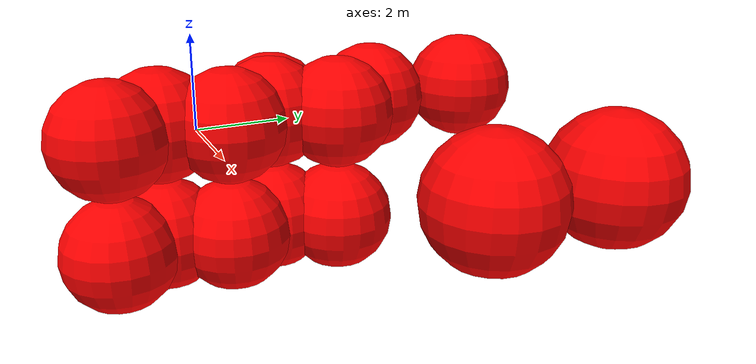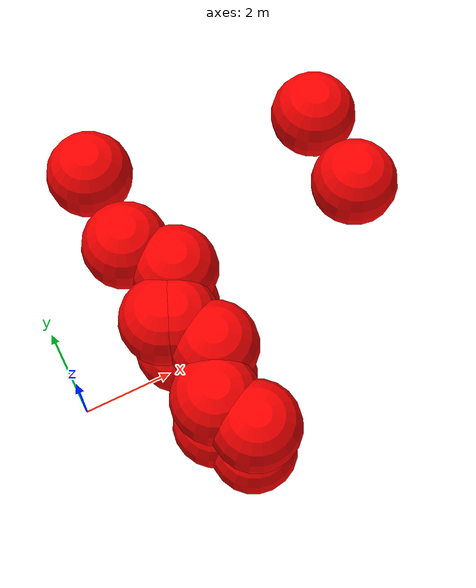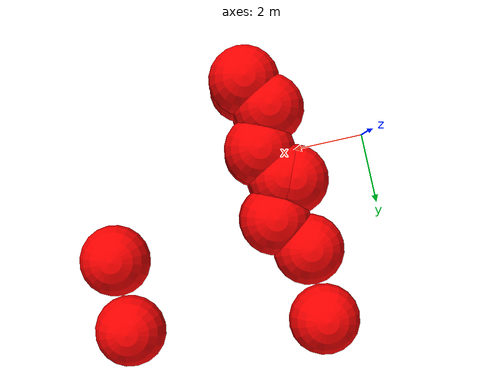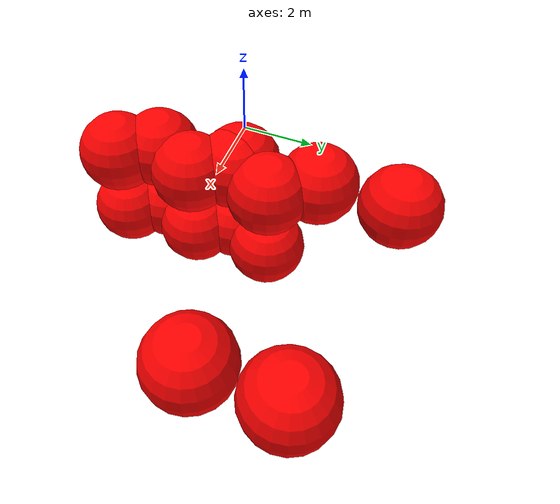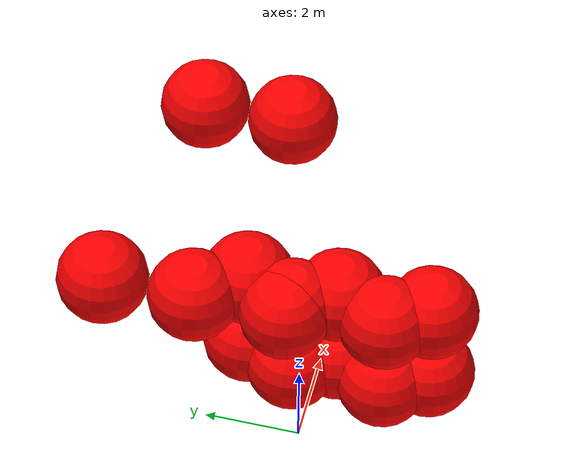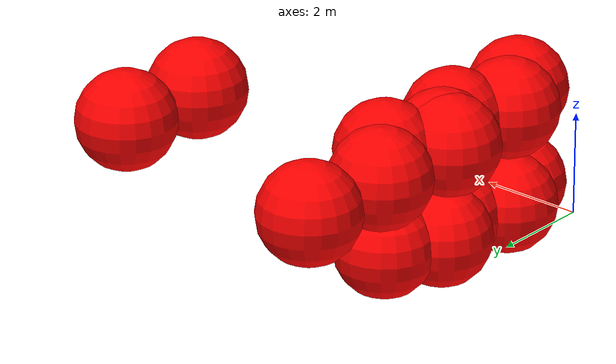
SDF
<sdf version="1.8">
 <world name="3d_world">
  <model name="obstacle_1" canonical_link="obstacle">
   <static>true</static>
   <pose relative_to="world">2.54 -1.25 -1.00 0 0 0</pose>
   <link name="obstacle">
    <pose relative_to="__model__">0.0 0 0.0 0 0 0</pose>
    <visual name="visual">
     <geometry><sphere><radius>1.00</radius></sphere></geometry>
     <material>
      <ambient>1.0 0.0 0.0 1</ambient>
      <diffuse>1.0 0.0 0.0 1</diffuse>
      <specular>1.0 0.0 0.0 1</specular>
     </material>
    </visual>
    <collision name="collision"><geometry><sphere><radius>1.00</radius></sphere></geometry></collision>
    <enable_gravity>false</enable_gravity>
   </link>
   <plugin filename="ignition-gazebo-velocity-control-system" name="ignition::gazebo::systems::VelocityControl">
    <initial_linear>0.00 0.00 0.00</initial_linear>
    <initial_angular>0 0 0</initial_angular>
   </plugin>
   <plugin filename="ignition-gazebo-odometry-publisher-system" name="ignition::gazebo::systems::OdometryPublisher">
    <dimensions>3</dimensions>
   </plugin>
  </model>
  <model name="obstacle_2" canonical_link="obstacle">
   <static>true</static>
   <pose relative_to="world">2.54 0.75 -1.00 0 0 0</pose>
   <link name="obstacle">
    <pose relative_to="__model__">0.0 0 0.0 0 0 0</pose>
    <visual name="visual">
     <geometry><sphere><radius>1.00</radius></sphere></geometry>
     <material>
      <ambient>1.0 0.0 0.0 1</ambient>
      <diffuse>1.0 0.0 0.0 1</diffuse>
      <specular>1.0 0.0 0.0 1</specular>
     </material>
    </visual>
    <collision name="collision"><geometry><sphere><radius>1.00</radius></sphere></geometry></collision>
    <enable_gravity>false</enable_gravity>
   </link>
   <plugin filename="ignition-gazebo-velocity-control-system" name="ignition::gazebo::systems::VelocityControl">
    <initial_linear>0.00 0.00 0.00</initial_linear>
    <initial_angular>0 0 0</initial_angular>
   </plugin>
   <plugin filename="ignition-gazebo-odometry-publisher-system" name="ignition::gazebo::systems::OdometryPublisher">
    <dimensions>3</dimensions>
   </plugin>
  </model>
  <model name="obstacle_3" canonical_link="obstacle">
   <static>true</static>
   <pose relative_to="world">2.54 -1.25 1.00 0 0 0</pose>
   <link name="obstacle">
    <pose relative_to="__model__">0.0 0 0.0 0 0 0</pose>
    <visual name="visual">
     <geometry><sphere><radius>1.00</radius></sphere></geometry>
     <material>
      <ambient>1.0 0.0 0.0 1</ambient>
      <diffuse>1.0 0.0 0.0 1</diffuse>
      <specular>1.0 0.0 0.0 1</specular>
     </material>
    </visual>
    <collision name="collision"><geometry><sphere><radius>1.00</radius></sphere></geometry></collision>
    <enable_gravity>false</enable_gravity>
   </link>
   <plugin filename="ignition-gazebo-velocity-control-system" name="ignition::gazebo::systems::VelocityControl">
    <initial_linear>0.00 0.00 0.00</initial_linear>
    <initial_angular>0 0 0</initial_angular>
   </plugin>
   <plugin filename="ignition-gazebo-odometry-publisher-system" name="ignition::gazebo::systems::OdometryPublisher">
    <dimensions>3</dimensions>
   </plugin>
  </model>
  <model name="obstacle_4" canonical_link="obstacle">
   <static>true</static>
   <pose relative_to="world">2.54 0.75 1.00 0 0 0</pose>
   <link name="obstacle">
    <pose relative_to="__model__">0.0 0 0.0 0 0 0</pose>
    <visual name="visual">
     <geometry><sphere><radius>1.00</radius></sphere></geometry>
     <material>
      <ambient>1.0 0.0 0.0 1</ambient>
      <diffuse>1.0 0.0 0.0 1</diffuse>
      <specular>1.0 0.0 0.0 1</specular>
     </material>
    </visual>
    <collision name="collision"><geometry><sphere><radius>1.00</radius></sphere></geometry></collision>
    <enable_gravity>false</enable_gravity>
   </link>
   <plugin filename="ignition-gazebo-velocity-control-system" name="ignition::gazebo::systems::VelocityControl">
    <initial_linear>0.00 0.00 0.00</initial_linear>
    <initial_angular>0 0 0</initial_angular>
   </plugin>
   <plugin filename="ignition-gazebo-odometry-publisher-system" name="ignition::gazebo::systems::OdometryPublisher">
    <dimensions>3</dimensions>
   </plugin>
  </model>
  <model name="obstacle_10" canonical_link="obstacle">
   <static>true</static>
   <pose relative_to="world">2.30 0.85 1.00 0 0 0</pose>
   <link name="obstacle">
    <pose relative_to="__model__">0.0 0 0.0 0 0 0</pose>
    <visual name="visual">
     <geometry><sphere><radius>1.00</radius></sphere></geometry>
     <material>
      <ambient>1.0 0.0 0.0 1</ambient>
      <diffuse>1.0 0.0 0.0 1</diffuse>
      <specular>1.0 0.0 0.0 1</specular>
     </material>
    </visual>
    <collision name="collision"><geometry><sphere><radius>1.00</radius></sphere></geometry></collision>
    <enable_gravity>false</enable_gravity>
   </link>
   <plugin filename="ignition-gazebo-velocity-control-system" name="ignition::gazebo::systems::VelocityControl">
    <initial_linear>0.00 0.00 0.00</initial_linear>
    <initial_angular>0 0 0</initial_angular>
   </plugin>
   <plugin filename="ignition-gazebo-odometry-publisher-system" name="ignition::gazebo::systems::OdometryPublisher">
    <dimensions>3</dimensions>
   </plugin>
  </model>
  <model name="obstacle_11" canonical_link="obstacle">
   <static>true</static>
   <pose relative_to="world">2.30 2.85 1.00 0 0 0</pose>
   <link name="obstacle">
    <pose relative_to="__model__">0.0 0 0.0 0 0 0</pose>
    <visual name="visual">
     <geometry><sphere><radius>1.00</radius></sphere></geometry>
     <material>
      <ambient>1.0 0.0 0.0 1</ambient>
      <diffuse>1.0 0.0 0.0 1</diffuse>
      <specular>1.0 0.0 0.0 1</specular>
     </material>
    </visual>
    <collision name="collision"><geometry><sphere><radius>1.00</radius></sphere></geometry></collision>
    <enable_gravity>false</enable_gravity>
   </link>
   <plugin filename="ignition-gazebo-velocity-control-system" name="ignition::gazebo::systems::VelocityControl">
    <initial_linear>0.00 0.00 0.00</initial_linear>
    <initial_angular>0 0 0</initial_angular>
   </plugin>
   <plugin filename="ignition-gazebo-odometry-publisher-system" name="ignition::gazebo::systems::OdometryPublisher">
    <dimensions>3</dimensions>
   </plugin>
  </model>
  <model name="obstacle_12" canonical_link="obstacle">
   <static>true</static>
   <pose relative_to="world">2.30 4.85 1.00 0 0 0</pose>
   <link name="obstacle">
    <pose relative_to="__model__">0.0 0 0.0 0 0 0</pose>
    <visual name="visual">
     <geometry><sphere><radius>1.00</radius></sphere></geometry>
     <material>
      <ambient>1.0 0.0 0.0 1</ambient>
      <diffuse>1.0 0.0 0.0 1</diffuse>
      <specular>1.0 0.0 0.0 1</specular>
     </material>
    </visual>
    <collision name="collision"><geometry><sphere><radius>1.00</radius></sphere></geometry></collision>
    <enable_gravity>false</enable_gravity>
   </link>
   <plugin filename="ignition-gazebo-velocity-control-system" name="ignition::gazebo::systems::VelocityControl">
    <initial_linear>0.00 0.00 0.00</initial_linear>
    <initial_angular>0 0 0</initial_angular>
   </plugin>
   <plugin filename="ignition-gazebo-odometry-publisher-system" name="ignition::gazebo::systems::OdometryPublisher">
    <dimensions>3</dimensions>
   </plugin>
  </model>
  <model name="obstacle_13" canonical_link="obstacle">
   <static>true</static>
   <pose relative_to="world">3.04 -2.16 -1.00 0 0 0</pose>
   <link name="obstacle">
    <pose relative_to="__model__">0.0 0 0.0 0 0 0</pose>
    <visual name="visual">
     <geometry><sphere><radius>1.00</radius></sphere></geometry>
     <material>
      <ambient>1.0 0.0 0.0 1</ambient>
      <diffuse>1.0 0.0 0.0 1</diffuse>
      <specular>1.0 0.0 0.0 1</specular>
     </material>
    </visual>
    <collision name="collision"><geometry><sphere><radius>1.00</radius></sphere></geometry></collision>
    <enable_gravity>false</enable_gravity>
   </link>
   <plugin filename="ignition-gazebo-velocity-control-system" name="ignition::gazebo::systems::VelocityControl">
    <initial_linear>0.00 0.00 0.00</initial_linear>
    <initial_angular>0 0 0</initial_angular>
   </plugin>
   <plugin filename="ignition-gazebo-odometry-publisher-system" name="ignition::gazebo::systems::OdometryPublisher">
    <dimensions>3</dimensions>
   </plugin>
  </model>
  <model name="obstacle_14" canonical_link="obstacle">
   <static>true</static>
   <pose relative_to="world">3.04 -0.16 -1.00 0 0 0</pose>
   <link name="obstacle">
    <pose relative_to="__model__">0.0 0 0.0 0 0 0</pose>
    <visual name="visual">
     <geometry><sphere><radius>1.00</radius></sphere></geometry>
     <material>
      <ambient>1.0 0.0 0.0 1</ambient>
      <diffuse>1.0 0.0 0.0 1</diffuse>
      <specular>1.0 0.0 0.0 1</specular>
     </material>
    </visual>
    <collision name="collision"><geometry><sphere><radius>1.00</radius></sphere></geometry></collision>
    <enable_gravity>false</enable_gravity>
   </link>
   <plugin filename="ignition-gazebo-velocity-control-system" name="ignition::gazebo::systems::VelocityControl">
    <initial_linear>0.00 0.00 0.00</initial_linear>
    <initial_angular>0 0 0</initial_angular>
   </plugin>
   <plugin filename="ignition-gazebo-odometry-publisher-system" name="ignition::gazebo::systems::OdometryPublisher">
    <dimensions>3</dimensions>
   </plugin>
  </model>
  <model name="obstacle_15" canonical_link="obstacle">
   <static>true</static>
   <pose relative_to="world">3.04 1.84 -1.00 0 0 0</pose>
   <link name="obstacle">
    <pose relative_to="__model__">0.0 0 0.0 0 0 0</pose>
    <visual name="visual">
     <geometry><sphere><radius>1.00</radius></sphere></geometry>
     <material>
      <ambient>1.0 0.0 0.0 1</ambient>
      <diffuse>1.0 0.0 0.0 1</diffuse>
      <specular>1.0 0.0 0.0 1</specular>
     </material>
    </visual>
    <collision name="collision"><geometry><sphere><radius>1.00</radius></sphere></geometry></collision>
    <enable_gravity>false</enable_gravity>
   </link>
   <plugin filename="ignition-gazebo-velocity-control-system" name="ignition::gazebo::systems::VelocityControl">
    <initial_linear>0.00 0.00 0.00</initial_linear>
    <initial_angular>0 0 0</initial_angular>
   </plugin>
   <plugin filename="ignition-gazebo-odometry-publisher-system" name="ignition::gazebo::systems::OdometryPublisher">
    <dimensions>3</dimensions>
   </plugin>
  </model>
  <model name="obstacle_16" canonical_link="obstacle">
   <static>true</static>
   <pose relative_to="world">3.04 -2.16 1.00 0 0 0</pose>
   <link name="obstacle">
    <pose relative_to="__model__">0.0 0 0.0 0 0 0</pose>
    <visual name="visual">
     <geometry><sphere><radius>1.00</radius></sphere></geometry>
     <material>
      <ambient>1.0 0.0 0.0 1</ambient>
      <diffuse>1.0 0.0 0.0 1</diffuse>
      <specular>1.0 0.0 0.0 1</specular>
     </material>
    </visual>
    <collision name="collision"><geometry><sphere><radius>1.00</radius></sphere></geometry></collision>
    <enable_gravity>false</enable_gravity>
   </link>
   <plugin filename="ignition-gazebo-velocity-control-system" name="ignition::gazebo::systems::VelocityControl">
    <initial_linear>0.00 0.00 0.00</initial_linear>
    <initial_angular>0 0 0</initial_angular>
   </plugin>
   <plugin filename="ignition-gazebo-odometry-publisher-system" name="ignition::gazebo::systems::OdometryPublisher">
    <dimensions>3</dimensions>
   </plugin>
  </model>
  <model name="obstacle_17" canonical_link="obstacle">
   <static>true</static>
   <pose relative_to="world">3.04 -0.16 1.00 0 0 0</pose>
   <link name="obstacle">
    <pose relative_to="__model__">0.0 0 0.0 0 0 0</pose>
    <visual name="visual">
     <geometry><sphere><radius>1.00</radius></sphere></geometry>
     <material>
      <ambient>1.0 0.0 0.0 1</ambient>
      <diffuse>1.0 0.0 0.0 1</diffuse>
      <specular>1.0 0.0 0.0 1</specular>
     </material>
    </visual>
    <collision name="collision"><geometry><sphere><radius>1.00</radius></sphere></geometry></collision>
    <enable_gravity>false</enable_gravity>
   </link>
   <plugin filename="ignition-gazebo-velocity-control-system" name="ignition::gazebo::systems::VelocityControl">
    <initial_linear>0.00 0.00 0.00</initial_linear>
    <initial_angular>0 0 0</initial_angular>
   </plugin>
   <plugin filename="ignition-gazebo-odometry-publisher-system" name="ignition::gazebo::systems::OdometryPublisher">
    <dimensions>3</dimensions>
   </plugin>
  </model>
  <model name="obstacle_18" canonical_link="obstacle">
   <static>true</static>
   <pose relative_to="world">3.04 1.84 1.00 0 0 0</pose>
   <link name="obstacle">
    <pose relative_to="__model__">0.0 0 0.0 0 0 0</pose>
    <visual name="visual">
     <geometry><sphere><radius>1.00</radius></sphere></geometry>
     <material>
      <ambient>1.0 0.0 0.0 1</ambient>
      <diffuse>1.0 0.0 0.0 1</diffuse>
      <specular>1.0 0.0 0.0 1</specular>
     </material>
    </visual>
    <collision name="collision"><geometry><sphere><radius>1.00</radius></sphere></geometry></collision>
    <enable_gravity>false</enable_gravity>
   </link>
   <plugin filename="ignition-gazebo-velocity-control-system" name="ignition::gazebo::systems::VelocityControl">
    <initial_linear>0.00 0.00 0.00</initial_linear>
    <initial_angular>0 0 0</initial_angular>
   </plugin>
   <plugin filename="ignition-gazebo-odometry-publisher-system" name="ignition::gazebo::systems::OdometryPublisher">
    <dimensions>3</dimensions>
   </plugin>
  </model>
  <model name="obstacle_27" canonical_link="obstacle">
   <static>false</static>
   <pose relative_to="world">7.66 1.98 1.01 0 0 0</pose>
   <link name="obstacle">
    <pose relative_to="__model__">0.0 0 0.0 0 0 0</pose>
    <visual name="visual">
     <geometry><sphere><radius>1.00</radius></sphere></geometry>
     <material>
      <ambient>1.0 0.0 0.0 1</ambient>
      <diffuse>1.0 0.0 0.0 1</diffuse>
      <specular>1.0 0.0 0.0 1</specular>
     </material>
    </visual>
    <collision name="collision"><geometry><sphere><radius>1.00</radius></sphere></geometry></collision>
    <enable_gravity>false</enable_gravity>
   </link>
   <plugin filename="ignition-gazebo-velocity-control-system" name="ignition::gazebo::systems::VelocityControl">
    <initial_linear>0.00 -1.42 -0.48</initial_linear>
    <initial_angular>0 0 0</initial_angular>
   </plugin>
   <plugin filename="ignition-gazebo-odometry-publisher-system" name="ignition::gazebo::systems::OdometryPublisher">
    <dimensions>3</dimensions>
   </plugin>
  </model>
  <model name="obstacle_28" canonical_link="obstacle">
   <static>false</static>
   <pose relative_to="world">7.66 3.98 1.01 0 0 0</pose>
   <link name="obstacle">
    <pose relative_to="__model__">0.0 0 0.0 0 0 0</pose>
    <visual name="visual">
     <geometry><sphere><radius>1.00</radius></sphere></geometry>
     <material>
      <ambient>1.0 0.0 0.0 1</ambient>
      <diffuse>1.0 0.0 0.0 1</diffuse>
      <specular>1.0 0.0 0.0 1</specular>
     </material>
    </visual>
    <collision name="collision"><geometry><sphere><radius>1.00</radius></sphere></geometry></collision>
    <enable_gravity>false</enable_gravity>
   </link>
   <plugin filename="ignition-gazebo-velocity-control-system" name="ignition::gazebo::systems::VelocityControl">
    <initial_linear>0.00 -1.42 -0.48</initial_linear>
    <initial_angular>0 0 0</initial_angular>
   </plugin>
   <plugin filename="ignition-gazebo-odometry-publisher-system" name="ignition::gazebo::systems::OdometryPublisher">
    <dimensions>3</dimensions>
   </plugin>
  </model>
 </world>
</sdf>
